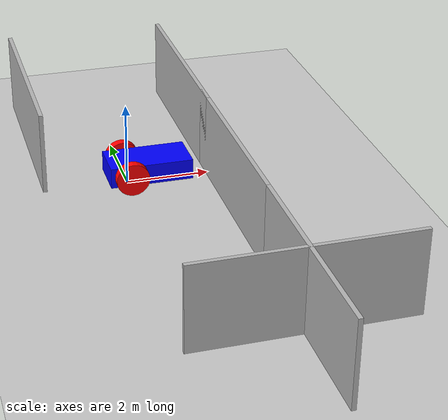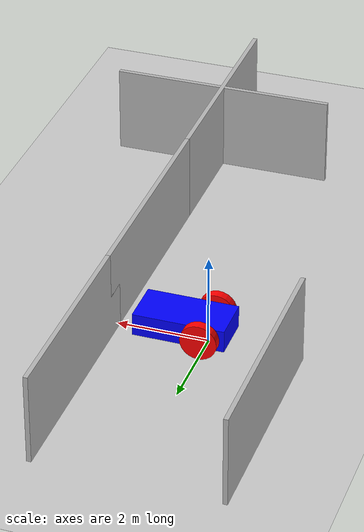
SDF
<sdf version='1.10'>
  <world name='car_world'>
    <physics name='1ms' type='ignored'>
      <max_step_size>0.001</max_step_size>
      <real_time_factor>1</real_time_factor>
      <real_time_update_rate>1000</real_time_update_rate>
    </physics>
    <plugin name='gz::sim::systems::Physics' filename='gz-sim-physics-system'/>
    <plugin name='gz::sim::systems::UserCommands' filename='gz-sim-user-commands-system'/>
    <plugin name='gz::sim::systems::SceneBroadcaster' filename='gz-sim-scene-broadcaster-system'/>
    <gravity>0 0 -9.8000000000000007</gravity>
    <magnetic_field>5.5644999999999998e-06 2.2875799999999999e-05 -4.2388400000000002e-05</magnetic_field>
    <atmosphere type='adiabatic'/>
    <scene>
      <ambient>0.400000006 0.400000006 0.400000006 1</ambient>
      <background>0.699999988 0.699999988 0.699999988 1</background>
      <shadows>true</shadows>
    </scene>
    <model name='ground_plane'>
      <static>true</static>
      <link name='link'>
        <collision name='collision'>
          <geometry>
            <plane>
              <normal>0 0 1</normal>
              <size>1 1</size>
            </plane>
          </geometry>
          <surface>
            <friction>
              <ode/>
            </friction>
            <bounce/>
            <contact/>
          </surface>
        </collision>
        <visual name='visual'>
          <geometry>
            <plane>
              <normal>0 0 1</normal>
              <size>100 100</size>
            </plane>
          </geometry>
          <material>
            <ambient>0.800000012 0.800000012 0.800000012 1</ambient>
            <diffuse>0.800000012 0.800000012 0.800000012 1</diffuse>
            <specular>0.800000012 0.800000012 0.800000012 1</specular>
          </material>
        </visual>
        <pose>0 0 0 0 0 0</pose>
        <inertial>
          <pose>0 0 0 0 0 0</pose>
          <mass>1</mass>
          <inertia>
            <ixx>1</ixx>
            <ixy>0</ixy>
            <ixz>0</ixz>
            <iyy>1</iyy>
            <iyz>0</iyz>
            <izz>1</izz>
          </inertia>
        </inertial>
        <enable_wind>false</enable_wind>
      </link>
      <pose>0 0 0 0 0 0</pose>
      <self_collide>false</self_collide>
    </model>
    <include>
      <uri>file:///home/jeff/harm_ws/src/harm/models/room_wall_2x5m</uri>
      <name>A1</name>
      <pose>-2 2.5130422115325928 1 0 0 0</pose>
    </include>
    <include>
      <uri>file:///home/jeff/harm_ws/src/harm/models/room_wall_2x5m</uri>
      <name>A2</name>
      <pose>2 2.4840750694274902 1 0 0 0</pose>
    </include>
    <model name='vehicle_blue' canonical_link='chassis'>
      <pose>0 0 0 0 0 0</pose>
      <link name='chassis'>
        <pose>0.5 0 0.40000000000000002 0 0 0</pose>
        <inertial>
          <mass>1.14395</mass>
          <inertia>
            <ixx>0.095328999999999997</ixx>
            <ixy>0</ixy>
            <ixz>0</ixz>
            <iyy>0.38131700000000002</iyy>
            <iyz>0</iyz>
            <izz>0.47664600000000001</izz>
          </inertia>
          <pose>0 0 0 0 0 0</pose>
        </inertial>
        <visual name='visual'>
          <geometry>
            <box>
              <size>2 1 0.5</size>
            </box>
          </geometry>
          <material>
            <ambient>0 0 1 1</ambient>
            <diffuse>0 0 1 1</diffuse>
            <specular>0 0 1 1</specular>
          </material>
        </visual>
        <collision name='collision'>
          <geometry>
            <box>
              <size>2 1 0.5</size>
            </box>
          </geometry>
          <surface>
            <friction>
              <ode/>
            </friction>
            <bounce/>
            <contact/>
          </surface>
        </collision>
        <enable_wind>false</enable_wind>
      </link>
      <link name='left_wheel'>
        <pose>0 0.59999999999999998 0.40000000000000002 -1.5706999999999995 0 0</pose>
        <inertial>
          <mass>1</mass>
          <inertia>
            <ixx>0.043333000000000003</ixx>
            <ixy>0</ixy>
            <ixz>0</ixz>
            <iyy>0.043333000000000003</iyy>
            <iyz>0</iyz>
            <izz>0.080000000000000002</izz>
          </inertia>
          <pose>0 0 0 0 0 0</pose>
        </inertial>
        <visual name='visual'>
          <geometry>
            <cylinder>
              <radius>0.40000000000000002</radius>
              <length>0.20000000000000001</length>
            </cylinder>
          </geometry>
          <material>
            <ambient>1 0 0 1</ambient>
            <diffuse>1 0 0 1</diffuse>
            <specular>1 0 0 1</specular>
          </material>
        </visual>
        <collision name='collision'>
          <geometry>
            <cylinder>
              <radius>0.40000000000000002</radius>
              <length>0.20000000000000001</length>
            </cylinder>
          </geometry>
          <surface>
            <friction>
              <ode/>
            </friction>
            <bounce/>
            <contact/>
          </surface>
        </collision>
        <enable_wind>false</enable_wind>
      </link>
      <link name='right_wheel'>
        <pose>0 -0.59999999999999998 0.40000000000000002 -1.5706999999999995 0 0</pose>
        <inertial>
          <mass>1</mass>
          <inertia>
            <ixx>0.043333000000000003</ixx>
            <ixy>0</ixy>
            <ixz>0</ixz>
            <iyy>0.043333000000000003</iyy>
            <iyz>0</iyz>
            <izz>0.080000000000000002</izz>
          </inertia>
          <pose>0 0 0 0 0 0</pose>
        </inertial>
        <visual name='visual'>
          <geometry>
            <cylinder>
              <radius>0.40000000000000002</radius>
              <length>0.20000000000000001</length>
            </cylinder>
          </geometry>
          <material>
            <ambient>1 0 0 1</ambient>
            <diffuse>1 0 0 1</diffuse>
            <specular>1 0 0 1</specular>
          </material>
        </visual>
        <collision name='collision'>
          <geometry>
            <cylinder>
              <radius>0.40000000000000002</radius>
              <length>0.20000000000000001</length>
            </cylinder>
          </geometry>
          <surface>
            <friction>
              <ode/>
            </friction>
            <bounce/>
            <contact/>
          </surface>
        </collision>
        <enable_wind>false</enable_wind>
      </link>
      <frame name='caster_frame' attached_to='chassis'>
        <pose>0.80000000000000004 0 -0.20000000000000001 0 0 0</pose>
      </frame>
      <link name='caster'>
        <pose>1.3 0 0.20000000000000001 0 0 0</pose>
        <inertial>
          <mass>1</mass>
          <inertia>
            <ixx>0.016</ixx>
            <ixy>0</ixy>
            <ixz>0</ixz>
            <iyy>0.016</iyy>
            <iyz>0</iyz>
            <izz>0.016</izz>
          </inertia>
          <pose>0 0 0 0 0 0</pose>
        </inertial>
        <visual name='visual'>
          <geometry>
            <sphere>
              <radius>0.20000000000000001</radius>
            </sphere>
          </geometry>
          <material>
            <ambient>0 1 0 1</ambient>
            <diffuse>0 1 0 1</diffuse>
            <specular>0 1 0 1</specular>
          </material>
        </visual>
        <collision name='collision'>
          <geometry>
            <sphere>
              <radius>0.20000000000000001</radius>
            </sphere>
          </geometry>
          <surface>
            <friction>
              <ode/>
            </friction>
            <bounce/>
            <contact/>
          </surface>
        </collision>
        <enable_wind>false</enable_wind>
      </link>
      <joint name='left_wheel_joint' type='revolute'>
        <pose>0 -2.2204460492503131e-16 0 0 0 0</pose>
        <parent>chassis</parent>
        <child>left_wheel</child>
        <axis>
          <xyz>0 9.6326794747692026e-05 0.99999999536057438</xyz>
          <limit>
            <lower>-1.7976900000000001e+308</lower>
            <upper>1.7976900000000001e+308</upper>
            <effort>inf</effort>
            <velocity>inf</velocity>
            <stiffness>100000000</stiffness>
            <dissipation>1</dissipation>
          </limit>
          <dynamics>
            <spring_reference>0</spring_reference>
            <spring_stiffness>0</spring_stiffness>
            <damping>0</damping>
            <friction>0</friction>
          </dynamics>
        </axis>
      </joint>
      <joint name='right_wheel_joint' type='revolute'>
        <pose>0 1.1102230246251565e-16 -1.1102230246251565e-16 0 0 0</pose>
        <parent>chassis</parent>
        <child>right_wheel</child>
        <axis>
          <xyz>0 9.6326794747692026e-05 0.99999999536057438</xyz>
          <limit>
            <lower>-1.7976900000000001e+308</lower>
            <upper>1.7976900000000001e+308</upper>
            <effort>inf</effort>
            <velocity>inf</velocity>
            <stiffness>100000000</stiffness>
            <dissipation>1</dissipation>
          </limit>
          <dynamics>
            <spring_reference>0</spring_reference>
            <spring_stiffness>0</spring_stiffness>
            <damping>0</damping>
            <friction>0</friction>
          </dynamics>
        </axis>
      </joint>
      <joint name='caster_wheel' type='ball'>
        <parent>chassis</parent>
        <child>caster</child>
        <pose>0 0 0 0 0 0</pose>
      </joint>
      <plugin name='gz::sim::systems::DiffDrive' filename='gz-sim-diff-drive-system'>
        <left_joint>left_wheel_joint</left_joint>
        <right_joint>right_wheel_joint</right_joint>
        <wheel_separation>1.2</wheel_separation>
        <wheel_radius>0.4</wheel_radius>
        <odom_publish_frequency>1</odom_publish_frequency>
        <topic>cmd_vel</topic>
      </plugin>
      <plugin name='gz::sim::systems::TriggeredPublisher' filename='gz-sim-triggered-publisher-system'>
        <input type='gz.msgs.Int32' topic='/keyboard/keypress'>
          <match field='data'>16777235</match>
        </input>
        <output type='gz.msgs.Twist' topic='/cmd_vel'>linear: {x: 0.5}, angular: {z: 0.0}</output>
      </plugin>
      <plugin name='gz::sim::systems::TriggeredPublisher' filename='gz-sim-triggered-publisher-system'>
        <input type='gz.msgs.Int32' topic='/keyboard/keypress'>
          <match field='data'>16777237</match>
        </input>
        <output type='gz.msgs.Twist' topic='/cmd_vel'>linear: {x: -0.5}, angular: {z: 0.0}</output>
      </plugin>
      <plugin name='gz::sim::systems::TriggeredPublisher' filename='gz-sim-triggered-publisher-system'>
        <input type='gz.msgs.Int32' topic='/keyboard/keypress'>
          <match field='data'>16777234</match>
        </input>
        <output type='gz.msgs.Twist' topic='/cmd_vel'>linear: { x: 0.0 }, angular: { z: 0.5 }</output>
      </plugin>
      <plugin name='gz::sim::systems::TriggeredPublisher' filename='gz-sim-triggered-publisher-system'>
        <input type='gz.msgs.Int32' topic='/keyboard/keypress'>
          <match field='data'>16777236</match>
        </input>
        <output type='gz.msgs.Twist' topic='/cmd_vel'>linear: { x: 0.0 }, angular: { z: -0.5 }</output>
      </plugin>
      <static>false</static>
      <self_collide>false</self_collide>
    </model>
    <include>
      <uri>file:///home/jeff/harm_ws/src/harm/models/room_wall_2x5m</uri>
      <name>A1_1</name>
      <pose>2 -2 1 0 0 0</pose>
    </include>
    <include>
      <uri>file:///home/jeff/harm_ws/src/harm/models/room_wall_2x5m</uri>
      <name>A1_2</name>
      <pose>2 -7 1 0 0 0</pose>
    </include>
    <include>
      <uri>file:///home/jeff/harm_ws/src/harm/models/room_wall_2x5m</uri>
      <name>A1_3</name>
      <pose>2 -7 1 0 0 1.575</pose>
    </include>
    <light name='sun' type='directional'>
      <pose>0 0 10 0 0 0</pose>
      <cast_shadows>true</cast_shadows>
      <intensity>1</intensity>
      <direction>-0.5 0.10000000000000001 -0.90000000000000002</direction>
      <diffuse>0.800000012 0.800000012 0.800000012 1</diffuse>
      <specular>0.200000003 0.200000003 0.200000003 1</specular>
      <attenuation>
        <range>1000</range>
        <linear>0.01</linear>
        <constant>0.90000000000000002</constant>
        <quadratic>0.001</quadratic>
      </attenuation>
      <spot>
        <inner_angle>0</inner_angle>
        <outer_angle>0</outer_angle>
        <falloff>0</falloff>
      </spot>
    </light>
  </world>
</sdf>

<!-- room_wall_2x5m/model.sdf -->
<sdf version='1.8'>
  <model name='room_wall_2x5m'>
    <link name="link">
      <visual name="visual">
        <geometry>
          <box>
            <size>0.1 5.0 2</size>
          </box>
        </geometry>
      </visual>
      <collision name ="collision">
        <geometry>
           <box>
            <size>0.1 5.0 2</size>
          </box>
        </geometry>
      </collision>
    </link>
    <static>1</static>
    <allow_auto_disable>1</allow_auto_disable>
  </model>
</sdf>
